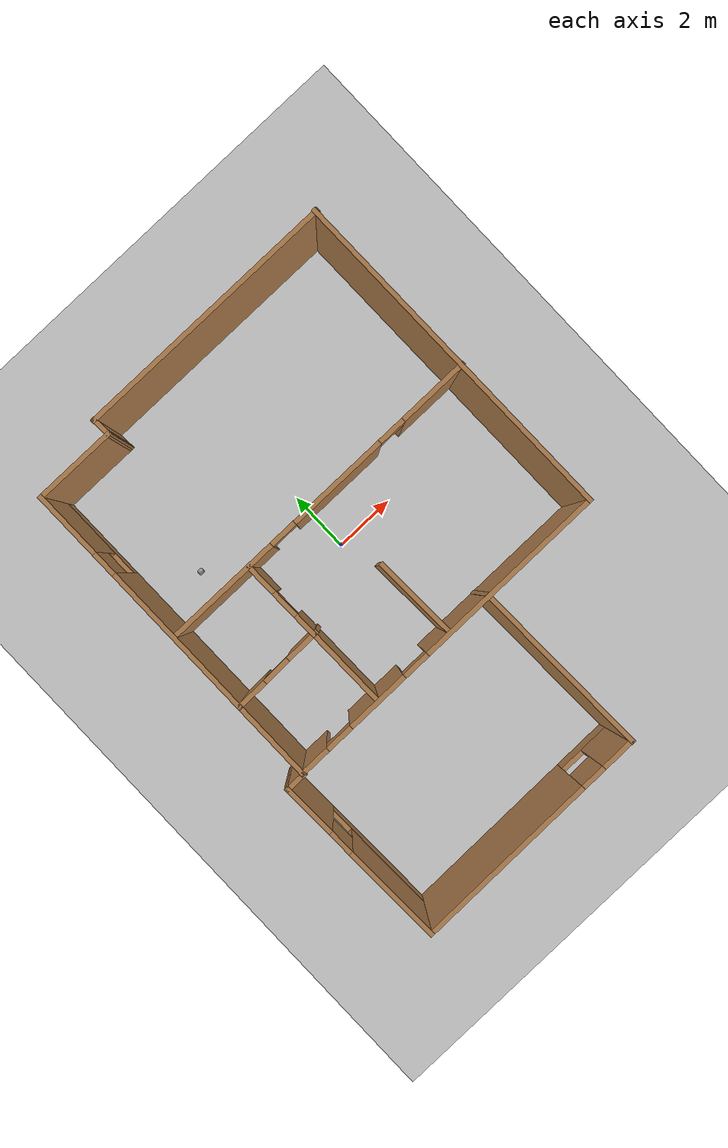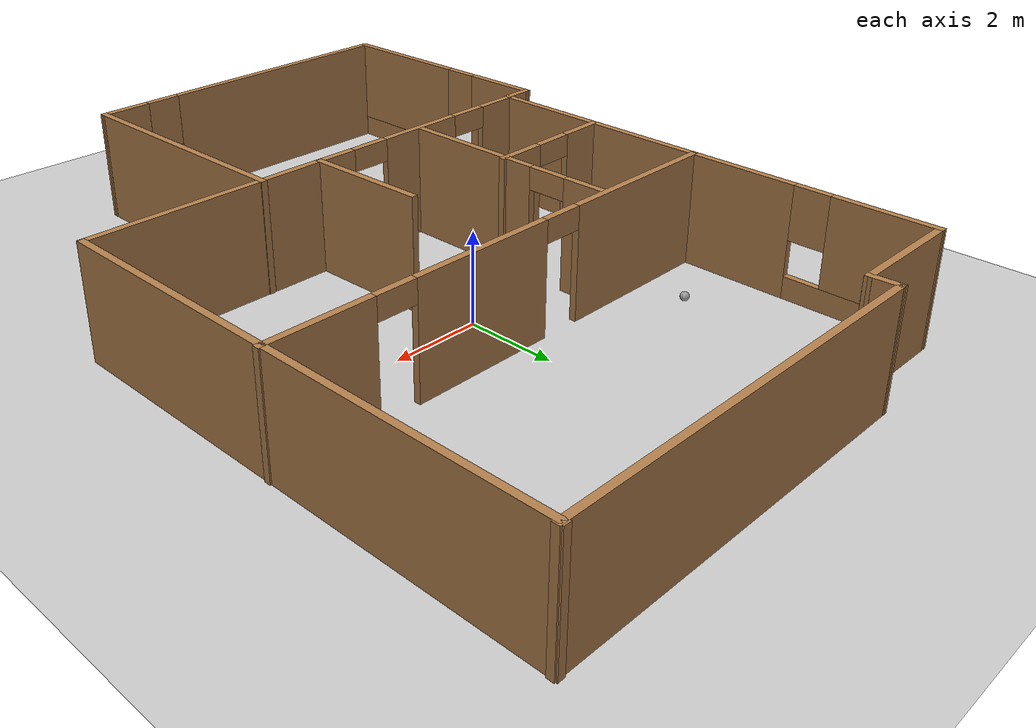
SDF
<sdf version="1.6">
 <world name="default">
  <light name="sun" type="directional">
   <pose>0 0 10 0 -0 0</pose>
   <diffuse>0.8 0.8 0.8 1</diffuse>
   <specular>0.2 0.2 0.2 1</specular>
   <attenuation>
    <range>1000</range>
    <constant>0.9</constant>
    <linear>0.01</linear>
    <quadratic>0.001</quadratic>
   </attenuation>
   <direction>-0.5 0.1 -0.9</direction>
  </light>
  <model name="ground_plane">
   <static>1</static>
   <link name="link">
    <collision name="collision">
     <geometry><plane><normal>0 0 1</normal><size>100 100</size></plane></geometry>
     <surface>
      <contact><collide_bitmask>65535</collide_bitmask></contact>
      <friction><ode><mu>100</mu><mu2>50</mu2></ode></friction>
     </surface>
    </collision>
    <visual name="visual">
     <cast_shadows>0</cast_shadows>
     <geometry><plane><normal>0 0 1</normal><size>100 100</size></plane></geometry>
     <material>
      <script><uri>file://media/materials/scripts/gazebo.material</uri><name>Gazebo/Grey</name></script>
     </material>
    </visual>
   </link>
  </model>
  <gravity>0 0 -9.8</gravity>
  <magnetic_field>6e-06 2.3e-05 -4.2e-05</magnetic_field>
  <atmosphere type="adiabatic"/>
  <physics name="default_physics" default="0" type="ode">
   <max_step_size>0.001</max_step_size>
   <real_time_factor>1</real_time_factor>
   <real_time_update_rate>1000</real_time_update_rate>
  </physics>
  <scene><ambient>0.4 0.4 0.4 1</ambient><background>0.7 0.7 0.7 1</background><shadows>1</shadows></scene>
  <spherical_coordinates>
   <surface_model>EARTH_WGS84</surface_model>
   <latitude_deg>0</latitude_deg>
   <longitude_deg>0</longitude_deg>
   <elevation>0</elevation>
   <heading_deg>0</heading_deg>
  </spherical_coordinates>
  <model name="mybuilding">
   <pose>0.0171 -1.22357 0 0 -0 0</pose>
   <link name="Wall_0">
    <collision name="Wall_0_Collision">
     <geometry><box><size>11.3467 0.15 2.5</size></box></geometry>
     <pose>0 0 1.25 0 -0 0</pose>
    </collision>
    <visual name="Wall_0_Visual">
     <pose>0 0 1.25 0 -0 0</pose>
     <geometry><box><size>11.3467 0.15 2.5</size></box></geometry>
     <material>
      <script><uri>file://media/materials/scripts/gazebo.material</uri><name>Gazebo/Wood</name></script>
      <ambient>1 1 1 1</ambient>
     </material>
     <meta><layer>0</layer></meta>
    </visual>
    <pose>5.84256 2.90409 0 0 0 -1.56533</pose>
   </link>
   <link name="Wall_1">
    <pose>0.305729 -2.72451 0 0 0 -3.1361</pose>
    <visual name="Wall_1_Visual_0">
     <pose>-2.46289 0 1.25 0 -0 0</pose>
     <geometry><box><size>6.35923 0.15 2.5</size></box></geometry>
     <material>
      <script><uri>file://media/materials/scripts/gazebo.material</uri><name>Gazebo/Wood</name></script>
      <ambient>1 1 1 1</ambient>
     </material>
     <meta><layer>0</layer></meta>
    </visual>
    <collision name="Wall_1_Collision_0">
     <geometry><box><size>6.35923 0.15 2.5</size></box></geometry>
     <pose>-2.46289 0 1.25 0 -0 0</pose>
    </collision>
    <visual name="Wall_1_Visual_1">
     <pose>2.65184 0 1.25 0 -0 0</pose>
     <geometry><box><size>2.07023 0.15 2.5</size></box></geometry>
     <material>
      <script><uri>file://media/materials/scripts/gazebo.material</uri><name>Gazebo/Wood</name></script>
      <ambient>1 1 1 1</ambient>
     </material>
     <meta><layer>0</layer></meta>
    </visual>
    <collision name="Wall_1_Collision_1">
     <geometry><box><size>2.07023 0.15 2.5</size></box></geometry>
     <pose>2.65184 0 1.25 0 -0 0</pose>
    </collision>
    <visual name="Wall_1_Visual_2">
     <pose>5.11473 0 1.25 0 -0 0</pose>
     <geometry><box><size>1.05554 0.15 2.5</size></box></geometry>
     <material>
      <script><uri>file://media/materials/scripts/gazebo.material</uri><name>Gazebo/Wood</name></script>
      <ambient>1 1 1 1</ambient>
     </material>
     <meta><layer>0</layer></meta>
    </visual>
    <collision name="Wall_1_Collision_2">
     <geometry><box><size>1.05554 0.15 2.5</size></box></geometry>
     <pose>5.11473 0 1.25 0 -0 0</pose>
    </collision>
    <visual name="Wall_1_Visual_3">
     <pose>1.16673 0 2.25 0 -0 0</pose>
     <geometry><box><size>0.9 0.15 0.5</size></box></geometry>
     <material>
      <script><uri>file://media/materials/scripts/gazebo.material</uri><name>Gazebo/Wood</name></script>
      <ambient>1 1 1 1</ambient>
     </material>
     <meta><layer>0</layer></meta>
    </visual>
    <collision name="Wall_1_Collision_3">
     <geometry><box><size>0.9 0.15 0.5</size></box></geometry>
     <pose>1.16673 0 2.25 0 -0 0</pose>
    </collision>
    <visual name="Wall_1_Visual_4">
     <pose>4.13696 0 2.25 0 -0 0</pose>
     <geometry><box><size>0.9 0.15 0.5</size></box></geometry>
     <material>
      <script><uri>file://media/materials/scripts/gazebo.material</uri><name>Gazebo/Wood</name></script>
      <ambient>1 1 1 1</ambient>
     </material>
     <meta><layer>0</layer></meta>
    </visual>
    <collision name="Wall_1_Collision_4">
     <geometry><box><size>0.9 0.15 0.5</size></box></geometry>
     <pose>4.13696 0 2.25 0 -0 0</pose>
    </collision>
   </link>
   <link name="Wall_10">
    <pose>-2.35562 -0.078452 0 0 -0 1.58263</pose>
    <visual name="Wall_10_Visual_0">
     <pose>-0.992326 0 1.25 0 -0 0</pose>
     <geometry><box><size>3.33546 0.15 2.5</size></box></geometry>
     <material>
      <script><uri>file://media/materials/scripts/gazebo.material</uri><name>Gazebo/Wood</name></script>
      <ambient>1 1 1 1</ambient>
     </material>
     <meta><layer>0</layer></meta>
    </visual>
    <collision name="Wall_10_Collision_0">
     <geometry><box><size>3.33546 0.15 2.5</size></box></geometry>
     <pose>-0.992326 0 1.25 0 -0 0</pose>
    </collision>
    <visual name="Wall_10_Visual_1">
     <pose>2.11773 0 1.25 0 -0 0</pose>
     <geometry><box><size>1.08465 0.15 2.5</size></box></geometry>
     <material>
      <script><uri>file://media/materials/scripts/gazebo.material</uri><name>Gazebo/Wood</name></script>
      <ambient>1 1 1 1</ambient>
     </material>
     <meta><layer>0</layer></meta>
    </visual>
    <collision name="Wall_10_Collision_1">
     <geometry><box><size>1.08465 0.15 2.5</size></box></geometry>
     <pose>2.11773 0 1.25 0 -0 0</pose>
    </collision>
    <visual name="Wall_10_Visual_2">
     <pose>1.1254 0 2.25 0 -0 0</pose>
     <geometry><box><size>0.9 0.15 0.5</size></box></geometry>
     <material>
      <script><uri>file://media/materials/scripts/gazebo.material</uri><name>Gazebo/Wood</name></script>
      <ambient>1 1 1 1</ambient>
     </material>
     <meta><layer>0</layer></meta>
    </visual>
    <collision name="Wall_10_Collision_2">
     <geometry><box><size>0.9 0.15 0.5</size></box></geometry>
     <pose>1.1254 0 2.25 0 -0 0</pose>
    </collision>
   </link>
   <link name="Wall_12">
    <pose>-3.77807 -0.154928 0 0 0 -3.12098</pose>
    <visual name="Wall_12_Visual_0">
     <pose>-0.984407 0 1.25 0 -0 0</pose>
     <geometry><box><size>1.14907 0.15 2.5</size></box></geometry>
     <material>
      <script><uri>file://media/materials/scripts/gazebo.material</uri><name>Gazebo/Wood</name></script>
      <ambient>1 1 1 1</ambient>
     </material>
     <meta><layer>0</layer></meta>
    </visual>
    <collision name="Wall_12_Collision_0">
     <geometry><box><size>1.14907 0.15 2.5</size></box></geometry>
     <pose>-0.984407 0 1.25 0 -0 0</pose>
    </collision>
    <visual name="Wall_12_Visual_1">
     <pose>1.02453 0 1.25 0 -0 0</pose>
     <geometry><box><size>1.06881 0.15 2.5</size></box></geometry>
     <material>
      <script><uri>file://media/materials/scripts/gazebo.material</uri><name>Gazebo/Wood</name></script>
      <ambient>1 1 1 1</ambient>
     </material>
     <meta><layer>0</layer></meta>
    </visual>
    <collision name="Wall_12_Collision_1">
     <geometry><box><size>1.06881 0.15 2.5</size></box></geometry>
     <pose>1.02453 0 1.25 0 -0 0</pose>
    </collision>
    <visual name="Wall_12_Visual_2">
     <pose>0.040128 0 2.25 0 -0 0</pose>
     <geometry><box><size>0.9 0.15 0.5</size></box></geometry>
     <material>
      <script><uri>file://media/materials/scripts/gazebo.material</uri><name>Gazebo/Wood</name></script>
      <ambient>1 1 1 1</ambient>
     </material>
     <meta><layer>0</layer></meta>
    </visual>
    <collision name="Wall_12_Collision_2">
     <geometry><box><size>0.9 0.15 0.5</size></box></geometry>
     <pose>0.040128 0 2.25 0 -0 0</pose>
    </collision>
   </link>
   <link name="Wall_14">
    <collision name="Wall_14_Collision">
     <geometry><box><size>0.749897 0.15 2.5</size></box></geometry>
     <pose>0 0 1.25 0 -0 0</pose>
    </collision>
    <visual name="Wall_14_Visual">
     <pose>0 0 1.25 0 -0 0</pose>
     <geometry><box><size>0.749897 0.15 2.5</size></box></geometry>
     <material>
      <script><uri>file://media/materials/scripts/gazebo.material</uri><name>Gazebo/Wood</name></script>
      <ambient>1 1 1 1</ambient>
     </material>
     <meta><layer>0</layer></meta>
    </visual>
    <pose>-5.57162 -2.79385 0 0 -0 3.14159</pose>
   </link>
   <link name="Wall_15">
    <pose>-5.79465 -5.6472 0 0 0 -1.54385</pose>
    <visual name="Wall_15_Visual_0">
     <pose>-2.03363 0 1.25 0 -0 0</pose>
     <geometry><box><size>1.79195 0.15 2.5</size></box></geometry>
     <material>
      <script><uri>file://media/materials/scripts/gazebo.material</uri><name>Gazebo/Wood</name></script>
      <ambient>1 1 1 1</ambient>
     </material>
     <meta><layer>0</layer></meta>
    </visual>
    <collision name="Wall_15_Collision_0">
     <geometry><box><size>1.79195 0.15 2.5</size></box></geometry>
     <pose>-2.03363 0 1.25 0 -0 0</pose>
    </collision>
    <visual name="Wall_15_Visual_1">
     <pose>0.895974 0 0.25 0 -0 0</pose>
     <geometry><box><size>4.06727 0.15 0.5</size></box></geometry>
     <material>
      <script><uri>file://media/materials/scripts/gazebo.material</uri><name>Gazebo/Wood</name></script>
      <ambient>1 1 1 1</ambient>
     </material>
     <meta><layer>0</layer></meta>
    </visual>
    <collision name="Wall_15_Collision_1">
     <geometry><box><size>4.06727 0.15 0.5</size></box></geometry>
     <pose>0.895974 0 0.25 0 -0 0</pose>
    </collision>
    <visual name="Wall_15_Visual_2">
     <pose>1.29597 0 1.5 0 -0 0</pose>
     <geometry><box><size>3.26727 0.15 2</size></box></geometry>
     <material>
      <script><uri>file://media/materials/scripts/gazebo.material</uri><name>Gazebo/Wood</name></script>
      <ambient>1 1 1 1</ambient>
     </material>
     <meta><layer>0</layer></meta>
    </visual>
    <collision name="Wall_15_Collision_2">
     <geometry><box><size>3.26727 0.15 2</size></box></geometry>
     <pose>1.29597 0 1.5 0 -0 0</pose>
    </collision>
    <visual name="Wall_15_Visual_3">
     <pose>-0.737661 0 1.9 0 -0 0</pose>
     <geometry><box><size>0.8 0.15 1.2</size></box></geometry>
     <material>
      <script><uri>file://media/materials/scripts/gazebo.material</uri><name>Gazebo/Wood</name></script>
      <ambient>1 1 1 1</ambient>
     </material>
     <meta><layer>0</layer></meta>
    </visual>
    <collision name="Wall_15_Collision_3">
     <geometry><box><size>0.8 0.15 1.2</size></box></geometry>
     <pose>-0.737661 0 1.9 0 -0 0</pose>
    </collision>
   </link>
   <link name="Wall_16">
    <pose>-1.81072 -8.4621 0 0 -0 0.009842</pose>
    <visual name="Wall_16_Visual_0">
     <pose>-0.98368 0 1.25 0 -0 0</pose>
     <geometry><box><size>5.99706 0.15 2.5</size></box></geometry>
     <material>
      <script><uri>file://media/materials/scripts/gazebo.material</uri><name>Gazebo/Wood</name></script>
      <ambient>1 1 1 1</ambient>
     </material>
     <meta><layer>0</layer></meta>
    </visual>
    <collision name="Wall_16_Collision_0">
     <geometry><box><size>5.99706 0.15 2.5</size></box></geometry>
     <pose>-0.98368 0 1.25 0 -0 0</pose>
    </collision>
    <visual name="Wall_16_Visual_1">
     <pose>2.99853 0 0.25 0 -0 0</pose>
     <geometry><box><size>1.96736 0.15 0.5</size></box></geometry>
     <material>
      <script><uri>file://media/materials/scripts/gazebo.material</uri><name>Gazebo/Wood</name></script>
      <ambient>1 1 1 1</ambient>
     </material>
     <meta><layer>0</layer></meta>
    </visual>
    <collision name="Wall_16_Collision_1">
     <geometry><box><size>1.96736 0.15 0.5</size></box></geometry>
     <pose>2.99853 0 0.25 0 -0 0</pose>
    </collision>
    <visual name="Wall_16_Visual_2">
     <pose>3.39853 0 1.5 0 -0 0</pose>
     <geometry><box><size>1.16736 0.15 2</size></box></geometry>
     <material>
      <script><uri>file://media/materials/scripts/gazebo.material</uri><name>Gazebo/Wood</name></script>
      <ambient>1 1 1 1</ambient>
     </material>
     <meta><layer>0</layer></meta>
    </visual>
    <collision name="Wall_16_Collision_2">
     <geometry><box><size>1.16736 0.15 2</size></box></geometry>
     <pose>3.39853 0 1.5 0 -0 0</pose>
    </collision>
    <visual name="Wall_16_Visual_3">
     <pose>2.41485 0 1.9 0 -0 0</pose>
     <geometry><box><size>0.8 0.15 1.2</size></box></geometry>
     <material>
      <script><uri>file://media/materials/scripts/gazebo.material</uri><name>Gazebo/Wood</name></script>
      <ambient>1 1 1 1</ambient>
     </material>
     <meta><layer>0</layer></meta>
    </visual>
    <collision name="Wall_16_Collision_3">
     <geometry><box><size>0.8 0.15 1.2</size></box></geometry>
     <pose>2.41485 0 1.9 0 -0 0</pose>
    </collision>
   </link>
   <link name="Wall_17">
    <collision name="Wall_17_Collision">
     <geometry><box><size>5.87459 0.15 2.5</size></box></geometry>
     <pose>0 0 1.25 0 -0 0</pose>
    </collision>
    <visual name="Wall_17_Visual">
     <pose>0 0 1.25 0 -0 0</pose>
     <geometry><box><size>5.87459 0.15 2.5</size></box></geometry>
     <material>
      <script><uri>file://media/materials/scripts/gazebo.material</uri><name>Gazebo/Wood</name></script>
      <ambient>1 1 1 1</ambient>
     </material>
     <meta><layer>0</layer></meta>
    </visual>
    <pose>2.02708 -5.5626 0 0 -0 1.59499</pose>
   </link>
   <link name="Wall_19">
    <collision name="Wall_19_Collision">
     <geometry><box><size>2.81234 0.15 2.5</size></box></geometry>
     <pose>0 0 1.25 0 -0 0</pose>
    </collision>
    <visual name="Wall_19_Visual">
     <pose>0 0 1.25 0 -0 0</pose>
     <geometry><box><size>2.81234 0.15 2.5</size></box></geometry>
     <material>
      <script><uri>file://media/materials/scripts/gazebo.material</uri><name>Gazebo/Wood</name></script>
      <ambient>1 1 1 1</ambient>
     </material>
     <meta><layer>0</layer></meta>
    </visual>
    <pose>0.42296 -1.36717 0 0 -0 1.60567</pose>
   </link>
   <link name="Wall_2">
    <pose>-5.27699 2.5829 0 0 -0 1.57366</pose>
    <visual name="Wall_2_Visual_0">
     <pose>-1.52577 0 1.25 0 -0 0</pose>
     <geometry><box><size>7.7745 0.15 2.5</size></box></geometry>
     <material>
      <script><uri>file://media/materials/scripts/gazebo.material</uri><name>Gazebo/Wood</name></script>
      <ambient>1 1 1 1</ambient>
     </material>
     <meta><layer>0</layer></meta>
    </visual>
    <collision name="Wall_2_Collision_0">
     <geometry><box><size>7.7745 0.15 2.5</size></box></geometry>
     <pose>-1.52577 0 1.25 0 -0 0</pose>
    </collision>
    <visual name="Wall_2_Visual_1">
     <pose>3.88725 0 0.25 0 -0 0</pose>
     <geometry><box><size>3.05154 0.15 0.5</size></box></geometry>
     <material>
      <script><uri>file://media/materials/scripts/gazebo.material</uri><name>Gazebo/Wood</name></script>
      <ambient>1 1 1 1</ambient>
     </material>
     <meta><layer>0</layer></meta>
    </visual>
    <collision name="Wall_2_Collision_1">
     <geometry><box><size>3.05154 0.15 0.5</size></box></geometry>
     <pose>3.88725 0 0.25 0 -0 0</pose>
    </collision>
    <visual name="Wall_2_Visual_2">
     <pose>4.28725 0 1.5 0 -0 0</pose>
     <geometry><box><size>2.25154 0.15 2</size></box></geometry>
     <material>
      <script><uri>file://media/materials/scripts/gazebo.material</uri><name>Gazebo/Wood</name></script>
      <ambient>1 1 1 1</ambient>
     </material>
     <meta><layer>0</layer></meta>
    </visual>
    <collision name="Wall_2_Collision_2">
     <geometry><box><size>2.25154 0.15 2</size></box></geometry>
     <pose>4.28725 0 1.5 0 -0 0</pose>
    </collision>
    <visual name="Wall_2_Visual_3">
     <pose>2.76148 0 1.9 0 -0 0</pose>
     <geometry><box><size>0.8 0.15 1.2</size></box></geometry>
     <material>
      <script><uri>file://media/materials/scripts/gazebo.material</uri><name>Gazebo/Wood</name></script>
      <ambient>1 1 1 1</ambient>
     </material>
     <meta><layer>0</layer></meta>
    </visual>
    <collision name="Wall_2_Collision_3">
     <geometry><box><size>0.8 0.15 1.2</size></box></geometry>
     <pose>2.76148 0 1.9 0 -0 0</pose>
    </collision>
   </link>
   <link name="Wall_3">
    <collision name="Wall_3_Collision">
     <geometry><box><size>2.75035 0.15 2.5</size></box></geometry>
     <pose>0 0 1.25 0 -0 0</pose>
    </collision>
    <visual name="Wall_3_Visual">
     <pose>0 0 1.25 0 -0 0</pose>
     <geometry><box><size>2.75035 0.15 2.5</size></box></geometry>
     <material>
      <script><uri>file://media/materials/scripts/gazebo.material</uri><name>Gazebo/Wood</name></script>
      <ambient>1 1 1 1</ambient>
     </material>
     <meta><layer>0</layer></meta>
    </visual>
    <pose>-3.9922 7.92089 0 0 -0 0</pose>
   </link>
   <link name="Wall_4">
    <collision name="Wall_4_Collision">
     <geometry><box><size>0.701473 0.15 2.5</size></box></geometry>
     <pose>0 0 1.25 0 -0 0</pose>
    </collision>
    <visual name="Wall_4_Visual">
     <pose>0 0 1.25 0 -0 0</pose>
     <geometry><box><size>0.701473 0.15 2.5</size></box></geometry>
     <material>
      <script><uri>file://media/materials/scripts/gazebo.material</uri><name>Gazebo/Wood</name></script>
      <ambient>1 1 1 1</ambient>
     </material>
     <meta><layer>0</layer></meta>
    </visual>
    <pose>-2.70741 8.19621 0 0 -0 1.6263</pose>
   </link>
   <link name="Wall_5">
    <collision name="Wall_5_Collision">
     <geometry><box><size>8.71526 0.15 2.5</size></box></geometry>
     <pose>0 0 1.25 0 -0 0</pose>
    </collision>
    <visual name="Wall_5_Visual">
     <pose>0 0 1.25 0 -0 0</pose>
     <geometry><box><size>8.71526 0.15 2.5</size></box></geometry>
     <material>
      <script><uri>file://media/materials/scripts/gazebo.material</uri><name>Gazebo/Wood</name></script>
      <ambient>1 1 1 1</ambient>
     </material>
     <meta><layer>0</layer></meta>
    </visual>
    <pose>1.55993 8.47152 0 0 -0 0</pose>
   </link>
   <link name="Wall_7">
    <pose>0.321024 2.52172 0 0 -0 0.002755</pose>
    <visual name="Wall_7_Visual_0">
     <pose>-3.72234 0 1.25 0 -0 0</pose>
     <geometry><box><size>3.80961 0.15 2.5</size></box></geometry>
     <material>
      <script><uri>file://media/materials/scripts/gazebo.material</uri><name>Gazebo/Wood</name></script>
      <ambient>1 1 1 1</ambient>
     </material>
     <meta><layer>0</layer></meta>
    </visual>
    <collision name="Wall_7_Collision_0">
     <geometry><box><size>3.80961 0.15 2.5</size></box></geometry>
     <pose>-3.72234 0 1.25 0 -0 0</pose>
    </collision>
    <visual name="Wall_7_Visual_1">
     <pose>0.728395 0 1.25 0 -0 0</pose>
     <geometry><box><size>3.29185 0.15 2.5</size></box></geometry>
     <material>
      <script><uri>file://media/materials/scripts/gazebo.material</uri><name>Gazebo/Wood</name></script>
      <ambient>1 1 1 1</ambient>
     </material>
     <meta><layer>0</layer></meta>
    </visual>
    <collision name="Wall_7_Collision_1">
     <geometry><box><size>3.29185 0.15 2.5</size></box></geometry>
     <pose>0.728395 0 1.25 0 -0 0</pose>
    </collision>
    <visual name="Wall_7_Visual_2">
     <pose>4.45073 0 1.25 0 -0 0</pose>
     <geometry><box><size>2.35283 0.15 2.5</size></box></geometry>
     <material>
      <script><uri>file://media/materials/scripts/gazebo.material</uri><name>Gazebo/Wood</name></script>
      <ambient>1 1 1 1</ambient>
     </material>
     <meta><layer>0</layer></meta>
    </visual>
    <collision name="Wall_7_Collision_2">
     <geometry><box><size>2.35283 0.15 2.5</size></box></geometry>
     <pose>4.45073 0 1.25 0 -0 0</pose>
    </collision>
    <visual name="Wall_7_Visual_3">
     <pose>-1.36753 0 2.25 0 -0 0</pose>
     <geometry><box><size>0.9 0.15 0.5</size></box></geometry>
     <material>
      <script><uri>file://media/materials/scripts/gazebo.material</uri><name>Gazebo/Wood</name></script>
      <ambient>1 1 1 1</ambient>
     </material>
     <meta><layer>0</layer></meta>
    </visual>
    <collision name="Wall_7_Collision_3">
     <geometry><box><size>0.9 0.15 0.5</size></box></geometry>
     <pose>-1.36753 0 2.25 0 -0 0</pose>
    </collision>
    <visual name="Wall_7_Visual_4">
     <pose>2.82432 0 2.25 0 -0 0</pose>
     <geometry><box><size>0.9 0.15 0.5</size></box></geometry>
     <material>
      <script><uri>file://media/materials/scripts/gazebo.material</uri><name>Gazebo/Wood</name></script>
      <ambient>1 1 1 1</ambient>
     </material>
     <meta><layer>0</layer></meta>
    </visual>
    <collision name="Wall_7_Collision_4">
     <geometry><box><size>0.9 0.15 0.5</size></box></geometry>
     <pose>2.82432 0 2.25 0 -0 0</pose>
    </collision>
   </link>
   <static>1</static>
  </model>
  <model name="ball">
   <link name="link_0">
    <inertial>
     <mass>1</mass>
     <inertia><ixx>0.1</ixx><ixy>0</ixy><ixz>0</ixz><iyy>0.1</iyy><iyz>0</iyz><izz>0.1</izz></inertia>
    </inertial>
    <visual name="visual">
     <geometry><sphere><radius>0.1</radius></sphere></geometry>
     <material>
      <lighting>1</lighting>
      <script><uri>file://media/materials/scripts/gazebo.material</uri><name>Gazebo/Grey</name></script>
      <shader type="pixel"><normal_map>__default__</normal_map></shader>
      <ambient>1 1 1 1</ambient>
      <diffuse>1 1 1 1</diffuse>
      <specular>1 1 1 1</specular>
      <emissive>1 1 1 1</emissive>
     </material>
    </visual>
    <collision name="collision">
     <geometry><sphere><radius>0.1</radius></sphere></geometry>
     <surface>
      <friction>
       <ode><mu>1</mu><mu2>1</mu2><fdir1>0 0 0</fdir1><slip1>0</slip1><slip2>0</slip2></ode>
       <torsional>
        <coefficient>1</coefficient>
        <patch_radius>0</patch_radius>
        <surface_radius>0</surface_radius>
        <use_patch_radius>1</use_patch_radius>
        <ode><slip>0</slip></ode>
       </torsional>
      </friction>
      <bounce><restitution_coefficient>0</restitution_coefficient><threshold>1e+06</threshold></bounce>
      <contact>
       <collide_without_contact>0</collide_without_contact>
       <collide_without_contact_bitmask>1</collide_without_contact_bitmask>
       <collide_bitmask>1</collide_bitmask>
       <ode>
        <soft_cfm>0</soft_cfm>
        <soft_erp>0.2</soft_erp>
        <kp>1e+13</kp>
        <kd>1</kd>
        <max_vel>0.01</max_vel>
        <min_depth>0</min_depth>
       </ode>
       <bullet>
        <split_impulse>1</split_impulse>
        <split_impulse_penetration_threshold>-0.01</split_impulse_penetration_threshold>
        <soft_cfm>0</soft_cfm>
        <soft_erp>0.2</soft_erp>
        <kp>1e+13</kp>
        <kd>1</kd>
       </bullet>
      </contact>
     </surface>
    </collision>
   </link>
   <static>0</static>
   <pose>-3.72006 2.38307 0.1 0 -0 0</pose>
  </model>
 </world>
</sdf>
